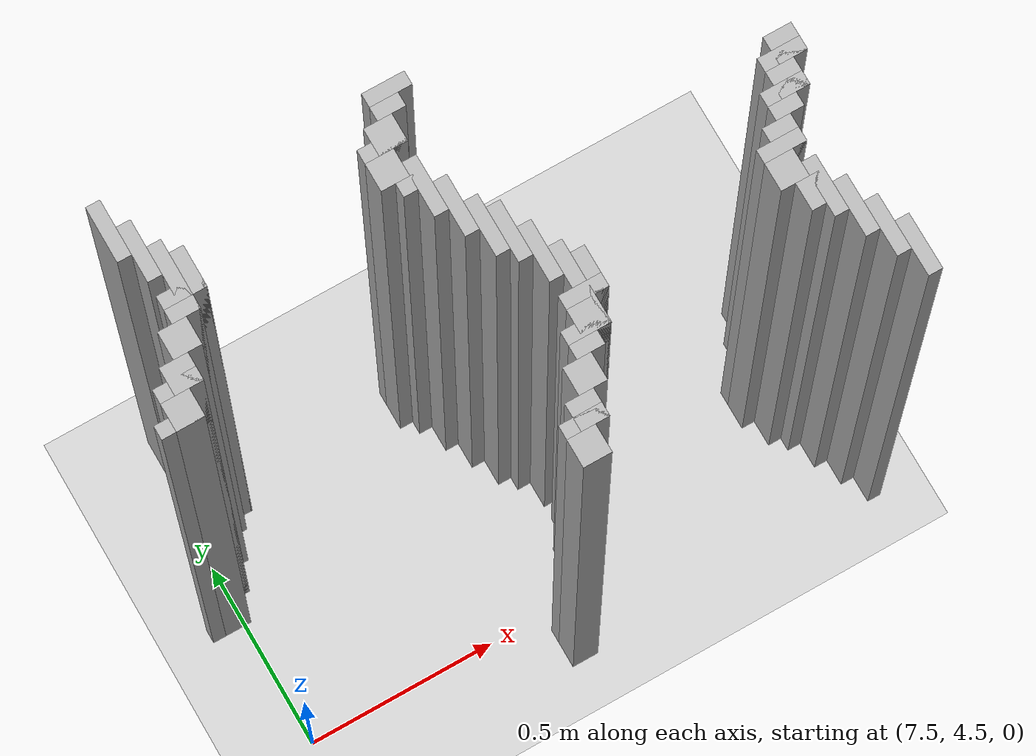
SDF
<sdf version="1.6">
 <world name="slam_world">
  <model name="ground_plane">
   <static>true</static>
   <link name="link">
    <collision name="collision">
     <geometry><plane><normal>0 0 1</normal><size>100 100</size></plane></geometry>
    </collision>
    <visual name="visual">
     <geometry><plane><normal>0 0 1</normal><size>100 100</size></plane></geometry>
     <material>
      <ambient>0.8 0.8 0.8 1</ambient>
      <diffuse>0.8 0.8 0.8 1</diffuse>
      <specular>0.8 0.8 0.8 1</specular>
     </material>
    </visual>
   </link>
  </model>
  <model name="wall_4029">
   <static>true</static>
   <pose>7.534802784222737 5.290023201856148 1.0 0 0 0</pose>
   <link name="link">
    <collision name="collision">
     <geometry><box><size>0.03480278422273782 0.13921113689095127 2.0</size></box></geometry>
    </collision>
    <visual name="visual">
     <geometry><box><size>0.03480278422273782 0.13921113689095127 2.0</size></box></geometry>
     <material><ambient>0.5 0.5 0.5 1</ambient><diffuse>0.7 0.7 0.7 1</diffuse></material>
    </visual>
   </link>
  </model>
  <model name="wall_4049">
   <static>true</static>
   <pose>7.569605568445476 5.220417633410673 1.0 0 0 0</pose>
   <link name="link">
    <collision name="collision">
     <geometry><box><size>0.03480278422273782 0.13921113689095127 2.0</size></box></geometry>
    </collision>
    <visual name="visual">
     <geometry><box><size>0.03480278422273782 0.13921113689095127 2.0</size></box></geometry>
     <material><ambient>0.5 0.5 0.5 1</ambient><diffuse>0.7 0.7 0.7 1</diffuse></material>
    </visual>
   </link>
  </model>
  <model name="wall_4050">
   <static>true</static>
   <pose>8.196055684454755 5.27262180974478 1.0 0 0 0</pose>
   <link name="link">
    <collision name="collision">
     <geometry><box><size>0.10440835266821345 0.03480278422273782 2.0</size></box></geometry>
    </collision>
    <visual name="visual">
     <geometry><box><size>0.10440835266821345 0.03480278422273782 2.0</size></box></geometry>
     <material><ambient>0.5 0.5 0.5 1</ambient><diffuse>0.7 0.7 0.7 1</diffuse></material>
    </visual>
   </link>
  </model>
  <model name="wall_4059">
   <static>true</static>
   <pose>8.178654292343387 5.237819025522041 1.0 0 0 0</pose>
   <link name="link">
    <collision name="collision">
     <geometry><box><size>0.06960556844547564 0.03480278422273782 2.0</size></box></geometry>
    </collision>
    <visual name="visual">
     <geometry><box><size>0.06960556844547564 0.03480278422273782 2.0</size></box></geometry>
     <material><ambient>0.5 0.5 0.5 1</ambient><diffuse>0.7 0.7 0.7 1</diffuse></material>
    </visual>
   </link>
  </model>
  <model name="wall_4068">
   <static>true</static>
   <pose>7.604408352668213 5.133410672853828 1.0 0 0 0</pose>
   <link name="link">
    <collision name="collision">
     <geometry><box><size>0.03480278422273782 0.17401392111368907 2.0</size></box></geometry>
    </collision>
    <visual name="visual">
     <geometry><box><size>0.03480278422273782 0.17401392111368907 2.0</size></box></geometry>
     <material><ambient>0.5 0.5 0.5 1</ambient><diffuse>0.7 0.7 0.7 1</diffuse></material>
    </visual>
   </link>
  </model>
  <model name="wall_4069">
   <static>true</static>
   <pose>8.14385150812065 5.185614849187935 1.0 0 0 0</pose>
   <link name="link">
    <collision name="collision">
     <geometry><box><size>0.06960556844547564 0.06960556844547564 2.0</size></box></geometry>
    </collision>
    <visual name="visual">
     <geometry><box><size>0.06960556844547564 0.06960556844547564 2.0</size></box></geometry>
     <material><ambient>0.5 0.5 0.5 1</ambient><diffuse>0.7 0.7 0.7 1</diffuse></material>
    </visual>
   </link>
  </model>
  <model name="wall_4081">
   <static>true</static>
   <pose>7.6392111368909505 5.133410672853828 1.0 0 0 0</pose>
   <link name="link">
    <collision name="collision">
     <geometry><box><size>0.03480278422273782 0.10440835266821345 2.0</size></box></geometry>
    </collision>
    <visual name="visual">
     <geometry><box><size>0.03480278422273782 0.10440835266821345 2.0</size></box></geometry>
     <material><ambient>0.5 0.5 0.5 1</ambient><diffuse>0.7 0.7 0.7 1</diffuse></material>
    </visual>
   </link>
  </model>
  <model name="wall_4082">
   <static>true</static>
   <pose>8.12645011600928 5.168213457076566 1.0 0 0 0</pose>
   <link name="link">
    <collision name="collision">
     <geometry><box><size>0.10440835266821345 0.03480278422273782 2.0</size></box></geometry>
    </collision>
    <visual name="visual">
     <geometry><box><size>0.10440835266821345 0.03480278422273782 2.0</size></box></geometry>
     <material><ambient>0.5 0.5 0.5 1</ambient><diffuse>0.7 0.7 0.7 1</diffuse></material>
    </visual>
   </link>
  </model>
  <model name="wall_4093">
   <static>true</static>
   <pose>8.109048723897912 5.1160092807424595 1.0 0 0 0</pose>
   <link name="link">
    <collision name="collision">
     <geometry><box><size>0.06960556844547564 0.06960556844547564 2.0</size></box></geometry>
    </collision>
    <visual name="visual">
     <geometry><box><size>0.06960556844547564 0.06960556844547564 2.0</size></box></geometry>
     <material><ambient>0.5 0.5 0.5 1</ambient><diffuse>0.7 0.7 0.7 1</diffuse></material>
    </visual>
   </link>
  </model>
  <model name="wall_4103">
   <static>true</static>
   <pose>7.604408352668213 5.09860788863109 1.0 0 0 0</pose>
   <link name="link">
    <collision name="collision">
     <geometry><box><size>0.10440835266821345 0.03480278422273782 2.0</size></box></geometry>
    </collision>
    <visual name="visual">
     <geometry><box><size>0.10440835266821345 0.03480278422273782 2.0</size></box></geometry>
     <material><ambient>0.5 0.5 0.5 1</ambient><diffuse>0.7 0.7 0.7 1</diffuse></material>
    </visual>
   </link>
  </model>
  <model name="wall_4104">
   <static>true</static>
   <pose>8.161252900232018 5.046403712296984 1.0 0 0 0</pose>
   <link name="link">
    <collision name="collision">
     <geometry><box><size>0.03480278422273782 0.13921113689095127 2.0</size></box></geometry>
    </collision>
    <visual name="visual">
     <geometry><box><size>0.03480278422273782 0.13921113689095127 2.0</size></box></geometry>
     <material><ambient>0.5 0.5 0.5 1</ambient><diffuse>0.7 0.7 0.7 1</diffuse></material>
    </visual>
   </link>
  </model>
  <model name="wall_4117">
   <static>true</static>
   <pose>7.587006960556844 5.0638051044083525 1.0 0 0 0</pose>
   <link name="link">
    <collision name="collision">
     <geometry><box><size>0.06960556844547564 0.03480278422273782 2.0</size></box></geometry>
    </collision>
    <visual name="visual">
     <geometry><box><size>0.06960556844547564 0.03480278422273782 2.0</size></box></geometry>
     <material><ambient>0.5 0.5 0.5 1</ambient><diffuse>0.7 0.7 0.7 1</diffuse></material>
    </visual>
   </link>
  </model>
  <model name="wall_4118">
   <static>true</static>
   <pose>8.14385150812065 5.0638051044083525 1.0 0 0 0</pose>
   <link name="link">
    <collision name="collision">
     <geometry><box><size>0.06960556844547564 0.03480278422273782 2.0</size></box></geometry>
    </collision>
    <visual name="visual">
     <geometry><box><size>0.06960556844547564 0.03480278422273782 2.0</size></box></geometry>
     <material><ambient>0.5 0.5 0.5 1</ambient><diffuse>0.7 0.7 0.7 1</diffuse></material>
    </visual>
   </link>
  </model>
  <model name="wall_4132">
   <static>true</static>
   <pose>7.552204176334106 5.0116009280742455 1.0 0 0 0</pose>
   <link name="link">
    <collision name="collision">
     <geometry><box><size>0.06960556844547564 0.06960556844547564 2.0</size></box></geometry>
    </collision>
    <visual name="visual">
     <geometry><box><size>0.06960556844547564 0.06960556844547564 2.0</size></box></geometry>
     <material><ambient>0.5 0.5 0.5 1</ambient><diffuse>0.7 0.7 0.7 1</diffuse></material>
    </visual>
   </link>
  </model>
  <model name="wall_4133">
   <static>true</static>
   <pose>8.196055684454755 4.976798143851508 1.0 0 0 0</pose>
   <link name="link">
    <collision name="collision">
     <geometry><box><size>0.03480278422273782 0.13921113689095127 2.0</size></box></geometry>
    </collision>
    <visual name="visual">
     <geometry><box><size>0.03480278422273782 0.13921113689095127 2.0</size></box></geometry>
     <material><ambient>0.5 0.5 0.5 1</ambient><diffuse>0.7 0.7 0.7 1</diffuse></material>
    </visual>
   </link>
  </model>
  <model name="wall_4147">
   <static>true</static>
   <pose>7.517401392111369 4.94199535962877 1.0 0 0 0</pose>
   <link name="link">
    <collision name="collision">
     <geometry><box><size>0.06960556844547564 0.06960556844547564 2.0</size></box></geometry>
    </collision>
    <visual name="visual">
     <geometry><box><size>0.06960556844547564 0.06960556844547564 2.0</size></box></geometry>
     <material><ambient>0.5 0.5 0.5 1</ambient><diffuse>0.7 0.7 0.7 1</diffuse></material>
    </visual>
   </link>
  </model>
  <model name="wall_4148">
   <static>true</static>
   <pose>8.230858468677495 4.907192575406032 1.0 0 0 0</pose>
   <link name="link">
    <collision name="collision">
     <geometry><box><size>0.03480278422273782 0.13921113689095127 2.0</size></box></geometry>
    </collision>
    <visual name="visual">
     <geometry><box><size>0.03480278422273782 0.13921113689095127 2.0</size></box></geometry>
     <material><ambient>0.5 0.5 0.5 1</ambient><diffuse>0.7 0.7 0.7 1</diffuse></material>
    </visual>
   </link>
  </model>
  <model name="wall_4149">
   <static>true</static>
   <pose>8.979118329466356 4.94199535962877 1.0 0 0 0</pose>
   <link name="link">
    <collision name="collision">
     <geometry><box><size>0.06960556844547564 0.06960556844547564 2.0</size></box></geometry>
    </collision>
    <visual name="visual">
     <geometry><box><size>0.06960556844547564 0.06960556844547564 2.0</size></box></geometry>
     <material><ambient>0.5 0.5 0.5 1</ambient><diffuse>0.7 0.7 0.7 1</diffuse></material>
    </visual>
   </link>
  </model>
  <model name="wall_4162">
   <static>true</static>
   <pose>7.5 4.924593967517401 1.0 0 0 0</pose>
   <link name="link">
    <collision name="collision">
     <geometry><box><size>0.10440835266821345 0.03480278422273782 2.0</size></box></geometry>
    </collision>
    <visual name="visual">
     <geometry><box><size>0.10440835266821345 0.03480278422273782 2.0</size></box></geometry>
     <material><ambient>0.5 0.5 0.5 1</ambient><diffuse>0.7 0.7 0.7 1</diffuse></material>
    </visual>
   </link>
  </model>
  <model name="wall_4163">
   <static>true</static>
   <pose>8.265661252900232 4.872389791183294 1.0 0 0 0</pose>
   <link name="link">
    <collision name="collision">
     <geometry><box><size>0.03480278422273782 0.13921113689095127 2.0</size></box></geometry>
    </collision>
    <visual name="visual">
     <geometry><box><size>0.03480278422273782 0.13921113689095127 2.0</size></box></geometry>
     <material><ambient>0.5 0.5 0.5 1</ambient><diffuse>0.7 0.7 0.7 1</diffuse></material>
    </visual>
   </link>
  </model>
  <model name="wall_4164">
   <static>true</static>
   <pose>8.961716937354987 4.924593967517401 1.0 0 0 0</pose>
   <link name="link">
    <collision name="collision">
     <geometry><box><size>0.10440835266821345 0.03480278422273782 2.0</size></box></geometry>
    </collision>
    <visual name="visual">
     <geometry><box><size>0.10440835266821345 0.03480278422273782 2.0</size></box></geometry>
     <material><ambient>0.5 0.5 0.5 1</ambient><diffuse>0.7 0.7 0.7 1</diffuse></material>
    </visual>
   </link>
  </model>
  <model name="wall_4175">
   <static>true</static>
   <pose>7.48259860788863 4.872389791183294 1.0 0 0 0</pose>
   <link name="link">
    <collision name="collision">
     <geometry><box><size>0.06960556844547564 0.06960556844547564 2.0</size></box></geometry>
    </collision>
    <visual name="visual">
     <geometry><box><size>0.06960556844547564 0.06960556844547564 2.0</size></box></geometry>
     <material><ambient>0.5 0.5 0.5 1</ambient><diffuse>0.7 0.7 0.7 1</diffuse></material>
    </visual>
   </link>
  </model>
  <model name="wall_4176">
   <static>true</static>
   <pose>8.944315545243619 4.872389791183294 1.0 0 0 0</pose>
   <link name="link">
    <collision name="collision">
     <geometry><box><size>0.06960556844547564 0.06960556844547564 2.0</size></box></geometry>
    </collision>
    <visual name="visual">
     <geometry><box><size>0.06960556844547564 0.06960556844547564 2.0</size></box></geometry>
     <material><ambient>0.5 0.5 0.5 1</ambient><diffuse>0.7 0.7 0.7 1</diffuse></material>
    </visual>
   </link>
  </model>
  <model name="wall_4187">
   <static>true</static>
   <pose>7.465197215777262 4.854988399071925 1.0 0 0 0</pose>
   <link name="link">
    <collision name="collision">
     <geometry><box><size>0.10440835266821345 0.03480278422273782 2.0</size></box></geometry>
    </collision>
    <visual name="visual">
     <geometry><box><size>0.10440835266821345 0.03480278422273782 2.0</size></box></geometry>
     <material><ambient>0.5 0.5 0.5 1</ambient><diffuse>0.7 0.7 0.7 1</diffuse></material>
    </visual>
   </link>
  </model>
  <model name="wall_4188">
   <static>true</static>
   <pose>8.30046403712297 4.802784222737819 1.0 0 0 0</pose>
   <link name="link">
    <collision name="collision">
     <geometry><box><size>0.03480278422273782 0.13921113689095127 2.0</size></box></geometry>
    </collision>
    <visual name="visual">
     <geometry><box><size>0.03480278422273782 0.13921113689095127 2.0</size></box></geometry>
     <material><ambient>0.5 0.5 0.5 1</ambient><diffuse>0.7 0.7 0.7 1</diffuse></material>
    </visual>
   </link>
  </model>
  <model name="wall_4189">
   <static>true</static>
   <pose>8.92691415313225 4.854988399071925 1.0 0 0 0</pose>
   <link name="link">
    <collision name="collision">
     <geometry><box><size>0.10440835266821345 0.03480278422273782 2.0</size></box></geometry>
    </collision>
    <visual name="visual">
     <geometry><box><size>0.10440835266821345 0.03480278422273782 2.0</size></box></geometry>
     <material><ambient>0.5 0.5 0.5 1</ambient><diffuse>0.7 0.7 0.7 1</diffuse></material>
    </visual>
   </link>
  </model>
  <model name="wall_4199">
   <static>true</static>
   <pose>8.909512761020881 4.820185614849188 1.0 0 0 0</pose>
   <link name="link">
    <collision name="collision">
     <geometry><box><size>0.06960556844547564 0.03480278422273782 2.0</size></box></geometry>
    </collision>
    <visual name="visual">
     <geometry><box><size>0.06960556844547564 0.03480278422273782 2.0</size></box></geometry>
     <material><ambient>0.5 0.5 0.5 1</ambient><diffuse>0.7 0.7 0.7 1</diffuse></material>
    </visual>
   </link>
  </model>
  <model name="wall_4210">
   <static>true</static>
   <pose>8.335266821345707 4.698375870069605 1.0 0 0 0</pose>
   <link name="link">
    <collision name="collision">
     <geometry><box><size>0.03480278422273782 0.2088167053364269 2.0</size></box></geometry>
    </collision>
    <visual name="visual">
     <geometry><box><size>0.03480278422273782 0.2088167053364269 2.0</size></box></geometry>
     <material><ambient>0.5 0.5 0.5 1</ambient><diffuse>0.7 0.7 0.7 1</diffuse></material>
    </visual>
   </link>
  </model>
  <model name="wall_4211">
   <static>true</static>
   <pose>8.874709976798144 4.767981438515081 1.0 0 0 0</pose>
   <link name="link">
    <collision name="collision">
     <geometry><box><size>0.06960556844547564 0.06960556844547564 2.0</size></box></geometry>
    </collision>
    <visual name="visual">
     <geometry><box><size>0.06960556844547564 0.06960556844547564 2.0</size></box></geometry>
     <material><ambient>0.5 0.5 0.5 1</ambient><diffuse>0.7 0.7 0.7 1</diffuse></material>
    </visual>
   </link>
  </model>
  <model name="wall_4224">
   <static>true</static>
   <pose>8.370069605568444 4.715777262180974 1.0 0 0 0</pose>
   <link name="link">
    <collision name="collision">
     <geometry><box><size>0.03480278422273782 0.10440835266821345 2.0</size></box></geometry>
    </collision>
    <visual name="visual">
     <geometry><box><size>0.03480278422273782 0.10440835266821345 2.0</size></box></geometry>
     <material><ambient>0.5 0.5 0.5 1</ambient><diffuse>0.7 0.7 0.7 1</diffuse></material>
    </visual>
   </link>
  </model>
  <model name="wall_4225">
   <static>true</static>
   <pose>8.857308584686775 4.750580046403712 1.0 0 0 0</pose>
   <link name="link">
    <collision name="collision">
     <geometry><box><size>0.10440835266821345 0.03480278422273782 2.0</size></box></geometry>
    </collision>
    <visual name="visual">
     <geometry><box><size>0.10440835266821345 0.03480278422273782 2.0</size></box></geometry>
     <material><ambient>0.5 0.5 0.5 1</ambient><diffuse>0.7 0.7 0.7 1</diffuse></material>
    </visual>
   </link>
  </model>
  <model name="wall_4238">
   <static>true</static>
   <pose>8.839907192575406 4.698375870069605 1.0 0 0 0</pose>
   <link name="link">
    <collision name="collision">
     <geometry><box><size>0.06960556844547564 0.06960556844547564 2.0</size></box></geometry>
    </collision>
    <visual name="visual">
     <geometry><box><size>0.06960556844547564 0.06960556844547564 2.0</size></box></geometry>
     <material><ambient>0.5 0.5 0.5 1</ambient><diffuse>0.7 0.7 0.7 1</diffuse></material>
    </visual>
   </link>
  </model>
  <model name="wall_4248">
   <static>true</static>
   <pose>8.335266821345707 4.6809744779582365 1.0 0 0 0</pose>
   <link name="link">
    <collision name="collision">
     <geometry><box><size>0.10440835266821345 0.03480278422273782 2.0</size></box></geometry>
    </collision>
    <visual name="visual">
     <geometry><box><size>0.10440835266821345 0.03480278422273782 2.0</size></box></geometry>
     <material><ambient>0.5 0.5 0.5 1</ambient><diffuse>0.7 0.7 0.7 1</diffuse></material>
    </visual>
   </link>
  </model>
  <model name="wall_4249">
   <static>true</static>
   <pose>8.892111368909513 4.6287703016241295 1.0 0 0 0</pose>
   <link name="link">
    <collision name="collision">
     <geometry><box><size>0.03480278422273782 0.13921113689095127 2.0</size></box></geometry>
    </collision>
    <visual name="visual">
     <geometry><box><size>0.03480278422273782 0.13921113689095127 2.0</size></box></geometry>
     <material><ambient>0.5 0.5 0.5 1</ambient><diffuse>0.7 0.7 0.7 1</diffuse></material>
    </visual>
   </link>
  </model>
  <model name="wall_4259">
   <static>true</static>
   <pose>8.317865429234338 4.6287703016241295 1.0 0 0 0</pose>
   <link name="link">
    <collision name="collision">
     <geometry><box><size>0.06960556844547564 0.06960556844547564 2.0</size></box></geometry>
    </collision>
    <visual name="visual">
     <geometry><box><size>0.06960556844547564 0.06960556844547564 2.0</size></box></geometry>
     <material><ambient>0.5 0.5 0.5 1</ambient><diffuse>0.7 0.7 0.7 1</diffuse></material>
    </visual>
   </link>
  </model>
  <model name="wall_4260">
   <static>true</static>
   <pose>8.874709976798144 4.6287703016241295 1.0 0 0 0</pose>
   <link name="link">
    <collision name="collision">
     <geometry><box><size>0.06960556844547564 0.06960556844547564 2.0</size></box></geometry>
    </collision>
    <visual name="visual">
     <geometry><box><size>0.06960556844547564 0.06960556844547564 2.0</size></box></geometry>
     <material><ambient>0.5 0.5 0.5 1</ambient><diffuse>0.7 0.7 0.7 1</diffuse></material>
    </visual>
   </link>
  </model>
  <model name="wall_4270">
   <static>true</static>
   <pose>8.30046403712297 4.611368909512761 1.0 0 0 0</pose>
   <link name="link">
    <collision name="collision">
     <geometry><box><size>0.10440835266821345 0.03480278422273782 2.0</size></box></geometry>
    </collision>
    <visual name="visual">
     <geometry><box><size>0.10440835266821345 0.03480278422273782 2.0</size></box></geometry>
     <material><ambient>0.5 0.5 0.5 1</ambient><diffuse>0.7 0.7 0.7 1</diffuse></material>
    </visual>
   </link>
  </model>
  <model name="wall_4271">
   <static>true</static>
   <pose>8.92691415313225 4.559164733178654 1.0 0 0 0</pose>
   <link name="link">
    <collision name="collision">
     <geometry><box><size>0.03480278422273782 0.13921113689095127 2.0</size></box></geometry>
    </collision>
    <visual name="visual">
     <geometry><box><size>0.03480278422273782 0.13921113689095127 2.0</size></box></geometry>
     <material><ambient>0.5 0.5 0.5 1</ambient><diffuse>0.7 0.7 0.7 1</diffuse></material>
    </visual>
   </link>
  </model>
  <model name="wall_4279">
   <static>true</static>
   <pose>8.2830626450116 4.576566125290023 1.0 0 0 0</pose>
   <link name="link">
    <collision name="collision">
     <geometry><box><size>0.06960556844547564 0.03480278422273782 2.0</size></box></geometry>
    </collision>
    <visual name="visual">
     <geometry><box><size>0.06960556844547564 0.03480278422273782 2.0</size></box></geometry>
     <material><ambient>0.5 0.5 0.5 1</ambient><diffuse>0.7 0.7 0.7 1</diffuse></material>
    </visual>
   </link>
  </model>
  <model name="wall_4286">
   <static>true</static>
   <pose>8.248259860788863 4.524361948955916 1.0 0 0 0</pose>
   <link name="link">
    <collision name="collision">
     <geometry><box><size>0.06960556844547564 0.06960556844547564 2.0</size></box></geometry>
    </collision>
    <visual name="visual">
     <geometry><box><size>0.06960556844547564 0.06960556844547564 2.0</size></box></geometry>
     <material><ambient>0.5 0.5 0.5 1</ambient><diffuse>0.7 0.7 0.7 1</diffuse></material>
    </visual>
   </link>
  </model>
  <model name="wall_4287">
   <static>true</static>
   <pose>8.961716937354987 4.489559164733178 1.0 0 0 0</pose>
   <link name="link">
    <collision name="collision">
     <geometry><box><size>0.03480278422273782 0.13921113689095127 2.0</size></box></geometry>
    </collision>
    <visual name="visual">
     <geometry><box><size>0.03480278422273782 0.13921113689095127 2.0</size></box></geometry>
     <material><ambient>0.5 0.5 0.5 1</ambient><diffuse>0.7 0.7 0.7 1</diffuse></material>
    </visual>
   </link>
  </model>
  <model name="wall_4297">
   <static>true</static>
   <pose>8.213457076566124 4.454756380510441 1.0 0 0 0</pose>
   <link name="link">
    <collision name="collision">
     <geometry><box><size>0.06960556844547564 0.06960556844547564 2.0</size></box></geometry>
    </collision>
    <visual name="visual">
     <geometry><box><size>0.06960556844547564 0.06960556844547564 2.0</size></box></geometry>
     <material><ambient>0.5 0.5 0.5 1</ambient><diffuse>0.7 0.7 0.7 1</diffuse></material>
    </visual>
   </link>
  </model>
  <model name="wall_4298">
   <static>true</static>
   <pose>8.996519721577727 4.419953596287703 1.0 0 0 0</pose>
   <link name="link">
    <collision name="collision">
     <geometry><box><size>0.03480278422273782 0.13921113689095127 2.0</size></box></geometry>
    </collision>
    <visual name="visual">
     <geometry><box><size>0.03480278422273782 0.13921113689095127 2.0</size></box></geometry>
     <material><ambient>0.5 0.5 0.5 1</ambient><diffuse>0.7 0.7 0.7 1</diffuse></material>
    </visual>
   </link>
  </model>
  <model name="wall_4308">
   <static>true</static>
   <pose>8.196055684454755 4.437354988399072 1.0 0 0 0</pose>
   <link name="link">
    <collision name="collision">
     <geometry><box><size>0.10440835266821345 0.03480278422273782 2.0</size></box></geometry>
    </collision>
    <visual name="visual">
     <geometry><box><size>0.10440835266821345 0.03480278422273782 2.0</size></box></geometry>
     <material><ambient>0.5 0.5 0.5 1</ambient><diffuse>0.7 0.7 0.7 1</diffuse></material>
    </visual>
   </link>
  </model>
  <model name="wall_4316">
   <static>true</static>
   <pose>8.178654292343387 4.385150812064965 1.0 0 0 0</pose>
   <link name="link">
    <collision name="collision">
     <geometry><box><size>0.06960556844547564 0.06960556844547564 2.0</size></box></geometry>
    </collision>
    <visual name="visual">
     <geometry><box><size>0.06960556844547564 0.06960556844547564 2.0</size></box></geometry>
     <material><ambient>0.5 0.5 0.5 1</ambient><diffuse>0.7 0.7 0.7 1</diffuse></material>
    </visual>
   </link>
  </model>
 </world>
</sdf>
